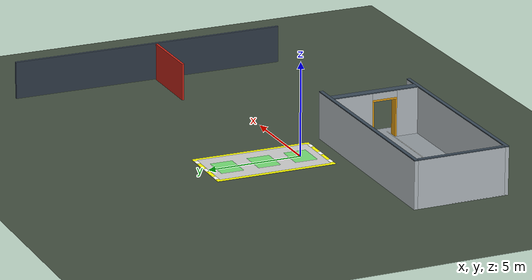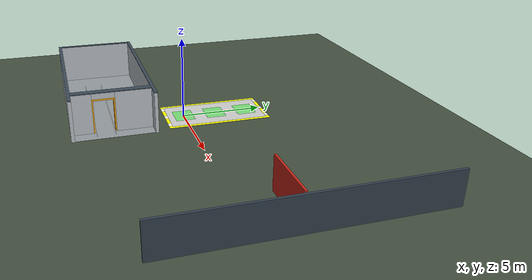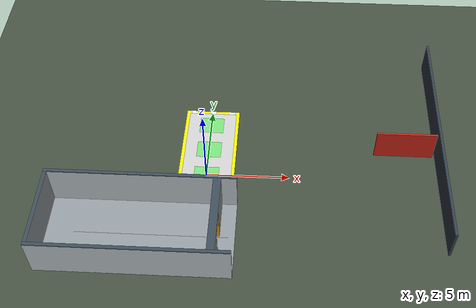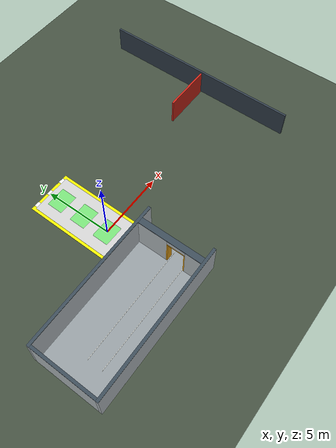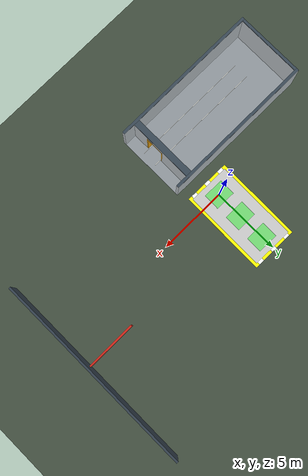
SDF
<sdf version="1.9">
 <world name="patrol_pilot">
  <physics name="physics" type="gz::sim::physics::Physics">
   <max_step_size>0.002</max_step_size>
   <real_time_factor>1.0</real_time_factor>
  </physics>
  <plugin filename="gz-sim-physics-system" name="gz::sim::systems::Physics"/>
  <plugin filename="gz-sim-user-commands-system" name="gz::sim::systems::UserCommands"/>
  <plugin filename="gz-sim-scene-broadcaster-system" name="gz::sim::systems::SceneBroadcaster"/>
  <plugin filename="gz-sim-sensors-system" name="gz::sim::systems::Sensors">
   <render_engine>ogre</render_engine>
  </plugin>
  <plugin filename="gz-sim-contact-system" name="gz::sim::systems::Contact"/>
  <gravity>0 0 -9.81</gravity>
  <scene>
   <ambient>0.45 0.45 0.45 1</ambient>
   <background>0.16 0.20 0.28 1</background>
   <shadows>true</shadows>
  </scene>
  <light name="sun" type="directional">
   <pose>0 0 12 0 0 0</pose>
   <direction>-0.3 0.4 -0.9</direction>
   <diffuse>0.9 0.9 0.85 1</diffuse>
  </light>
  <model name="yard_ground">
   <static>true</static>
   <link name="link">
    <collision name="c"><geometry><plane><normal>0 0 1</normal><size>50 50</size></plane></geometry></collision>
    <visual name="v">
     <geometry><plane><normal>0 0 1</normal><size>50 50</size></plane></geometry>
     <material><diffuse>0.26 0.31 0.25 1</diffuse><ambient>0.26 0.31 0.25 1</ambient></material>
    </visual>
   </link>
  </model>
  <model name="indoor_passage">
   <static>true</static>
   <link name="floor">
    <pose>-3.5 -4.5 0.027000000000000003 0 0 0</pose>
    <visual name="visual">
     <geometry><box><size>11 5.1 0.004</size></box></geometry>
     <material><ambient>0.57 0.60 0.62 1</ambient><diffuse>0.57 0.60 0.62 1</diffuse></material>
    </visual>
   </link>
   <link name="north_wall">
    <pose>-3.5 -2.05 1.25 0 0 0</pose>
    <collision name="collision"><geometry><box><size>11 0.2 2.5</size></box></geometry></collision>
    <visual name="visual">
     <geometry><box><size>11 0.2 2.5</size></box></geometry>
     <material><ambient>0.76 0.79 0.81 1</ambient><diffuse>0.76 0.79 0.81 1</diffuse></material>
    </visual>
   </link>
   <link name="south_wall">
    <pose>-3.5 -6.95 1.25 0 0 0</pose>
    <collision name="collision"><geometry><box><size>11 0.2 2.5</size></box></geometry></collision>
    <visual name="visual">
     <geometry><box><size>11 0.2 2.5</size></box></geometry>
     <material><ambient>0.76 0.79 0.81 1</ambient><diffuse>0.76 0.79 0.81 1</diffuse></material>
    </visual>
   </link>
   <link name="west_wall">
    <pose>-8.9 -4.5 1.25 0 0 0</pose>
    <collision name="collision"><geometry><box><size>0.2 4.7 2.5</size></box></geometry></collision>
    <visual name="visual">
     <geometry><box><size>0.2 4.7 2.5</size></box></geometry>
     <material><ambient>0.76 0.79 0.81 1</ambient><diffuse>0.76 0.79 0.81 1</diffuse></material>
    </visual>
   </link>
   <link name="bottleneck_left">
    <pose>0.9 -3.235 1.25 0 0 0</pose>
    <collision name="collision"><geometry><box><size>0.45 2.17 2.5</size></box></geometry></collision>
    <visual name="visual">
     <geometry><box><size>0.45 2.17 2.5</size></box></geometry>
     <material><ambient>0.76 0.79 0.81 1</ambient><diffuse>0.76 0.79 0.81 1</diffuse></material>
    </visual>
   </link>
   <link name="bottleneck_right">
    <pose>0.9 -6.265 1.25 0 0 0</pose>
    <collision name="collision"><geometry><box><size>0.45 1.17 2.5</size></box></geometry></collision>
    <visual name="visual">
     <geometry><box><size>0.45 1.17 2.5</size></box></geometry>
     <material><ambient>0.76 0.79 0.81 1</ambient><diffuse>0.76 0.79 0.81 1</diffuse></material>
    </visual>
   </link>
   <link name="door_jamb_north">
    <pose>0.9 -4.36 1.025 0 0 0</pose>
    <collision name="collision"><geometry><box><size>0.45 0.08 2.05</size></box></geometry></collision>
    <visual name="visual">
     <geometry><box><size>0.45 0.08 2.05</size></box></geometry>
     <material><ambient>0.95 0.66 0.08 1</ambient><diffuse>0.95 0.66 0.08 1</diffuse></material>
    </visual>
   </link>
   <link name="door_jamb_south">
    <pose>0.9 -5.64 1.025 0 0 0</pose>
    <collision name="collision"><geometry><box><size>0.45 0.08 2.05</size></box></geometry></collision>
    <visual name="visual">
     <geometry><box><size>0.45 0.08 2.05</size></box></geometry>
     <material><ambient>0.95 0.66 0.08 1</ambient><diffuse>0.95 0.66 0.08 1</diffuse></material>
    </visual>
   </link>
   <link name="door_header">
    <pose>0.9 -5.0 2.1 0 0 0</pose>
    <collision name="collision"><geometry><box><size>0.45 1.36 0.1</size></box></geometry></collision>
    <visual name="visual">
     <geometry><box><size>0.45 1.36 0.1</size></box></geometry>
     <material><ambient>0.95 0.66 0.08 1</ambient><diffuse>0.95 0.66 0.08 1</diffuse></material>
    </visual>
   </link>
   <link name="door_lintel">
    <pose>0.9 -5.0 2.325 0 0 0</pose>
    <collision name="collision"><geometry><box><size>0.45 1.36 0.35</size></box></geometry></collision>
    <visual name="visual">
     <geometry><box><size>0.45 1.36 0.35</size></box></geometry>
     <material><ambient>0.76 0.79 0.81 1</ambient><diffuse>0.76 0.79 0.81 1</diffuse></material>
    </visual>
   </link>
   <link name="north_wall_cap">
    <pose>-3.5 -2.05 2.525 0 0 0</pose>
    <collision name="collision"><geometry><box><size>11 0.2 0.05</size></box></geometry></collision>
    <visual name="visual">
     <geometry><box><size>11 0.2 0.05</size></box></geometry>
     <material><ambient>0.23 0.29 0.34 1</ambient><diffuse>0.23 0.29 0.34 1</diffuse></material>
    </visual>
   </link>
   <link name="south_wall_cap">
    <pose>-3.5 -6.95 2.525 0 0 0</pose>
    <collision name="collision"><geometry><box><size>11 0.2 0.05</size></box></geometry></collision>
    <visual name="visual">
     <geometry><box><size>11 0.2 0.05</size></box></geometry>
     <material><ambient>0.23 0.29 0.34 1</ambient><diffuse>0.23 0.29 0.34 1</diffuse></material>
    </visual>
   </link>
   <link name="west_wall_cap">
    <pose>-8.9 -4.5 2.525 0 0 0</pose>
    <collision name="collision"><geometry><box><size>0.2 4.7 0.05</size></box></geometry></collision>
    <visual name="visual">
     <geometry><box><size>0.2 4.7 0.05</size></box></geometry>
     <material><ambient>0.23 0.29 0.34 1</ambient><diffuse>0.23 0.29 0.34 1</diffuse></material>
    </visual>
   </link>
   <link name="entry_wall_cap">
    <pose>0.9 -4.5 2.525 0 0 0</pose>
    <collision name="collision"><geometry><box><size>0.45 4.7 0.05</size></box></geometry></collision>
    <visual name="visual">
     <geometry><box><size>0.45 4.7 0.05</size></box></geometry>
     <material><ambient>0.23 0.29 0.34 1</ambient><diffuse>0.23 0.29 0.34 1</diffuse></material>
    </visual>
   </link>
   <link name="lane_edge_north">
    <pose>-2.8 -4.45 0.030000000000000002 0 0 0</pose>
    <visual name="visual">
     <geometry><box><size>8.8 0.035 0.002</size></box></geometry>
     <material><ambient>0.90 0.91 0.88 1</ambient><diffuse>0.90 0.91 0.88 1</diffuse></material>
    </visual>
   </link>
   <link name="lane_edge_south">
    <pose>-2.8 -5.55 0.030000000000000002 0 0 0</pose>
    <visual name="visual">
     <geometry><box><size>8.8 0.035 0.002</size></box></geometry>
     <material><ambient>0.90 0.91 0.88 1</ambient><diffuse>0.90 0.91 0.88 1</diffuse></material>
    </visual>
   </link>
  </model>
  <model name="fence">
   <static>true</static>
   <link name="back">
    <pose>14 2.5 1.0 0 0 0</pose>
    <collision name="c"><geometry><box><size>0.15 15 2</size></box></geometry></collision>
    <visual name="v">
     <geometry><box><size>0.15 15 2</size></box></geometry>
     <material><diffuse>0.2 0.25 0.3 1</diffuse><ambient>0.2 0.25 0.3 1</ambient></material>
    </visual>
   </link>
   <link name="open_gate_leaf">
    <pose>12 2.1 1.0 0 0 1.57</pose>
    <collision name="c"><geometry><box><size>0.12 3.6 2</size></box></geometry></collision>
    <visual name="v">
     <geometry><box><size>0.12 3.6 2</size></box></geometry>
     <material><diffuse>0.8 0.15 0.1 1</diffuse><ambient>0.8 0.15 0.1 1</ambient></material>
    </visual>
   </link>
  </model>
  <include><uri>model://charging_zone</uri><name>charging_zone</name><pose>0 2 0 0 0 1.56223</pose></include>
 </world>
</sdf>

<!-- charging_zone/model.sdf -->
<sdf version="1.10">
  <model name="charging_zone">
    <static>true</static>

    <link name="zone_link">

      <!-- MAIN FLOOR (inner area) -->
      <visual name="inner_area">
        <pose>0 0 0.01 0 0 0</pose>
        <geometry>
          <box>
            <!-- Space for 3 Husky robots -->
            <size>6 3 0.02</size>
          </box>
        </geometry>
        <material>
          <!-- light gray center -->
          <ambient>0.8 0.8 0.8 0.6</ambient>
          <diffuse>0.8 0.8 0.8 0.6</diffuse>
        </material>
      </visual>

      <!-- BORDER BASE (yellow) -->
      <visual name="border_base">
        <pose>0 0 0.011 0 0 0</pose>
        <geometry>
          <box>
            <size>6.4 3.4 0.02</size>
          </box>
        </geometry>
        <material>
          <ambient>1 1 0 1</ambient> <!-- yellow -->
          <diffuse>1 1 0 1</diffuse>
        </material>
      </visual>

      <!-- INNER CUT (to create border effect) -->
      <visual name="border_cut">
        <pose>0 0 0.012 0 0 0</pose>
        <geometry>
          <box>
            <size>6 3 0.025</size>
          </box>
        </geometry>
        <material>
          <ambient>0.8 0.8 0.8 1</ambient>
          <diffuse>0.8 0.8 0.8 1</diffuse>
        </material>
      </visual>

      <!-- STRIPES (white blocks) -->

      <!-- left stripes -->
      <visual name="stripe_left_1">
        <pose>-3.1 -1.2 0.02 0 0 0</pose>
        <geometry><box><size>0.2 0.4 0.02</size></box></geometry>
        <material><ambient>1 1 1 1</ambient></material>
      </visual>

      <visual name="stripe_left_2">
        <pose>-3.1 0 0.02 0 0 0</pose>
        <geometry><box><size>0.2 0.4 0.02</size></box></geometry>
        <material><ambient>1 1 1 1</ambient></material>
      </visual>

      <visual name="stripe_left_3">
        <pose>-3.1 1.2 0.02 0 0 0</pose>
        <geometry><box><size>0.2 0.4 0.02</size></box></geometry>
        <material><ambient>1 1 1 1</ambient></material>
      </visual>

      <!-- right stripes -->
      <visual name="stripe_right_1">
        <pose>3.1 -1.2 0.02 0 0 0</pose>
        <geometry><box><size>0.2 0.4 0.02</size></box></geometry>
        <material><ambient>1 1 1 1</ambient></material>
      </visual>

      <visual name="stripe_right_2">
        <pose>3.1 0 0.02 0 0 0</pose>
        <geometry><box><size>0.2 0.4 0.02</size></box></geometry>
        <material><ambient>1 1 1 1</ambient></material>
      </visual>

      <visual name="stripe_right_3">
        <pose>3.1 1.2 0.02 0 0 0</pose>
        <geometry><box><size>0.2 0.4 0.02</size></box></geometry>
        <material><ambient>1 1 1 1</ambient></material>
      </visual>

      <!-- ROBOT POSITION MARKERS -->

      <!-- slot 1 -->
      <visual name="robot_slot_1">
        <pose>-2 0 0.02 0 0 0</pose>
        <geometry>
          <box>
            <size>1.2 1.5 0.02</size>
          </box>
        </geometry>
        <material>
          <ambient>0 1 0 0.4</ambient>
        </material>
      </visual>

      <!-- slot 2 -->
      <visual name="robot_slot_2">
        <pose>0 0 0.02 0 0 0</pose>
        <geometry>
          <box>
            <size>1.2 1.5 0.02</size>
          </box>
        </geometry>
        <material>
          <ambient>0 1 0 0.4</ambient>
        </material>
      </visual>

      <!-- slot 3 -->
      <visual name="robot_slot_3">
        <pose>2 0 0.02 0 0 0</pose>
        <geometry>
          <box>
            <size>1.2 1.5 0.02</size>
          </box>
        </geometry>
        <material>
          <ambient>0 1 0 0.4</ambient>
        </material>
      </visual>

    </link>
  </model>
</sdf>
